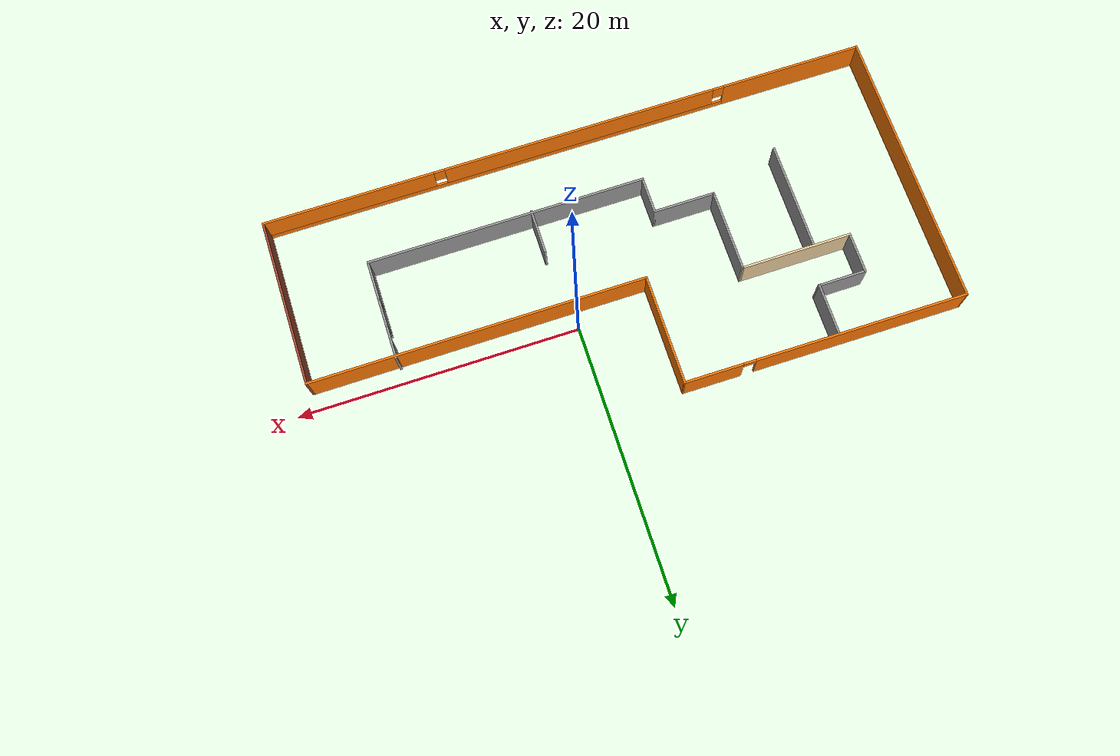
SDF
<?xml version='1.0'?>
<sdf version='1.6'>
  <model name='room'>
    <pose frame=''>-3.47828 -3.35772 0 0 -0 0</pose>
    <link name='Wall_0'>
      <collision name='Wall_0_Collision'>
        <geometry>
          <box>
            <size>20.25 0.15 2.5</size>
          </box>
        </geometry>
        <pose frame=''>0 0 1.25 0 -0 0</pose>
      </collision>
      <visual name='Wall_0_Visual'>
        <pose frame=''>0 0 1.25 0 -0 0</pose>
        <geometry>
          <box>
            <size>20.25 0.15 2.5</size>
          </box>
        </geometry>
        <material>
          <script>
            <uri>file://media/materials/scripts/gazebo.material</uri>
            <name>Gazebo/Grey</name>
          </script>
          <ambient>0.996078 0.47451 0.0196078 1</ambient>
        </material>
        <meta>
          <layer>0</layer>
        </meta>
      </visual>
      <pose frame=''>-22.0497 -0.000277 0 0 0 -1.5708</pose>
    </link>
    <link name='Wall_1'>
      <pose frame=''>0.000276 -10.0503 0 0 -0 0</pose>
      <visual name='Wall_1_Visual_0'>
        <pose frame=''>-16.9576 0 1.25 0 -0 0</pose>
        <geometry>
          <box>
            <size>10.3348 0.15 2.5</size>
          </box>
        </geometry>
        <material>
          <script>
            <uri>file://media/materials/scripts/gazebo.material</uri>
            <name>Gazebo/Grey</name>
          </script>
          <ambient>0.996078 0.47451 0.0196078 1</ambient>
        </material>
        <meta>
          <layer>0</layer>
        </meta>
      </visual>
      <collision name='Wall_1_Collision_0'>
        <geometry>
          <box>
            <size>10.3348 0.15 2.5</size>
          </box>
        </geometry>
        <pose frame=''>-16.9576 0 1.25 0 -0 0</pose>
      </collision>
      <visual name='Wall_1_Visual_1'>
        <pose frame=''>5.16739 0 0.25 0 -0 0</pose>
        <geometry>
          <box>
            <size>33.9152 0.15 0.5</size>
          </box>
        </geometry>
        <material>
          <script>
            <uri>file://media/materials/scripts/gazebo.material</uri>
            <name>Gazebo/Grey</name>
          </script>
          <ambient>0.996078 0.47451 0.0196078 1</ambient>
        </material>
        <meta>
          <layer>0</layer>
        </meta>
      </visual>
      <collision name='Wall_1_Collision_1'>
        <geometry>
          <box>
            <size>33.9152 0.15 0.5</size>
          </box>
        </geometry>
        <pose frame=''>5.16739 0 0.25 0 -0 0</pose>
      </collision>
      <visual name='Wall_1_Visual_2'>
        <pose frame=''>-0.99201 0 1.5 0 -0 0</pose>
        <geometry>
          <box>
            <size>19.9964 0.15 2</size>
          </box>
        </geometry>
        <material>
          <script>
            <uri>file://media/materials/scripts/gazebo.material</uri>
            <name>Gazebo/Grey</name>
          </script>
          <ambient>0.996078 0.47451 0.0196078 1</ambient>
        </material>
        <meta>
          <layer>0</layer>
        </meta>
      </visual>
      <collision name='Wall_1_Collision_2'>
        <geometry>
          <box>
            <size>19.9964 0.15 2</size>
          </box>
        </geometry>
        <pose frame=''>-0.99201 0 1.5 0 -0 0</pose>
      </collision>
      <visual name='Wall_1_Visual_3'>
        <pose frame=''>15.9656 0 1.5 0 -0 0</pose>
        <geometry>
          <box>
            <size>12.3188 0.15 2</size>
          </box>
        </geometry>
        <material>
          <script>
            <uri>file://media/materials/scripts/gazebo.material</uri>
            <name>Gazebo/Grey</name>
          </script>
          <ambient>0.996078 0.47451 0.0196078 1</ambient>
        </material>
        <meta>
          <layer>0</layer>
        </meta>
      </visual>
      <collision name='Wall_1_Collision_3'>
        <geometry>
          <box>
            <size>12.3188 0.15 2</size>
          </box>
        </geometry>
        <pose frame=''>15.9656 0 1.5 0 -0 0</pose>
      </collision>
      <visual name='Wall_1_Visual_4'>
        <pose frame=''>-11.3902 0 1.9 0 -0 0</pose>
        <geometry>
          <box>
            <size>0.8 0.15 1.2</size>
          </box>
        </geometry>
        <material>
          <script>
            <uri>file://media/materials/scripts/gazebo.material</uri>
            <name>Gazebo/Grey</name>
          </script>
          <ambient>0.996078 0.47451 0.0196078 1</ambient>
        </material>
        <meta>
          <layer>0</layer>
        </meta>
      </visual>
      <collision name='Wall_1_Collision_4'>
        <geometry>
          <box>
            <size>0.8 0.15 1.2</size>
          </box>
        </geometry>
        <pose frame=''>-11.3902 0 1.9 0 -0 0</pose>
      </collision>
      <visual name='Wall_1_Visual_5'>
        <pose frame=''>9.4062 0 1.9 0 -0 0</pose>
        <geometry>
          <box>
            <size>0.8 0.15 1.2</size>
          </box>
        </geometry>
        <material>
          <script>
            <uri>file://media/materials/scripts/gazebo.material</uri>
            <name>Gazebo/Grey</name>
          </script>
          <ambient>0.996078 0.47451 0.0196078 1</ambient>
        </material>
        <meta>
          <layer>0</layer>
        </meta>
      </visual>
      <collision name='Wall_1_Collision_5'>
        <geometry>
          <box>
            <size>0.8 0.15 1.2</size>
          </box>
        </geometry>
        <pose frame=''>9.4062 0 1.9 0 -0 0</pose>
      </collision>
    </link>
    <link name='Wall_10'>
      <collision name='Wall_10_Collision'>
        <geometry>
          <box>
            <size>8 0.15 2.5</size>
          </box>
        </geometry>
        <pose frame=''>0 0 1.25 0 -0 0</pose>
      </collision>
      <visual name='Wall_10_Visual'>
        <pose frame=''>0 0 1.25 0 -0 0</pose>
        <geometry>
          <box>
            <size>8 0.15 2.5</size>
          </box>
        </geometry>
        <material>
          <script>
            <uri>file://media/materials/scripts/gazebo.material</uri>
            <name>Gazebo/Grey</name>
          </script>
          <ambient>0.921569 0.807843 0.615686 1</ambient>
        </material>
        <meta>
          <layer>0</layer>
        </meta>
      </visual>
      <pose frame=''>-12.2007 3.45572 0 0 -0 0</pose>
    </link>
    <link name='Wall_11'>
      <collision name='Wall_11_Collision'>
        <geometry>
          <box>
            <size>6 0.15 2.5</size>
          </box>
        </geometry>
        <pose frame=''>0 0 1.25 0 -0 0</pose>
      </collision>
      <visual name='Wall_11_Visual'>
        <pose frame=''>0 0 1.25 0 -0 0</pose>
        <geometry>
          <box>
            <size>6 0.15 2.5</size>
          </box>
        </geometry>
        <material>
          <script>
            <uri>file://media/materials/scripts/gazebo.material</uri>
            <name>Gazebo/Grey</name>
          </script>
          <ambient>1 1 1 1</ambient>
        </material>
        <meta>
          <layer>0</layer>
        </meta>
      </visual>
      <pose frame=''>-8.27576 0.530883 0 0 0 -1.57081</pose>
    </link>
    <link name='Wall_12'>
      <collision name='Wall_12_Collision'>
        <geometry>
          <box>
            <size>4.5 0.15 2.5</size>
          </box>
        </geometry>
        <pose frame=''>0 0 1.25 0 -0 0</pose>
      </collision>
      <visual name='Wall_12_Visual'>
        <pose frame=''>0 0 1.25 0 -0 0</pose>
        <geometry>
          <box>
            <size>4.5 0.15 2.5</size>
          </box>
        </geometry>
        <material>
          <script>
            <uri>file://media/materials/scripts/gazebo.material</uri>
            <name>Gazebo/Grey</name>
          </script>
          <ambient>1 1 1 1</ambient>
        </material>
        <meta>
          <layer>0</layer>
        </meta>
      </visual>
      <pose frame=''>-6.10079 -2.39396 0 0 -0 0</pose>
    </link>
    <link name='Wall_13'>
      <collision name='Wall_13_Collision'>
        <geometry>
          <box>
            <size>2.75 0.15 2.5</size>
          </box>
        </geometry>
        <pose frame=''>0 0 1.25 0 -0 0</pose>
      </collision>
      <visual name='Wall_13_Visual'>
        <pose frame=''>0 0 1.25 0 -0 0</pose>
        <geometry>
          <box>
            <size>2.75 0.15 2.5</size>
          </box>
        </geometry>
        <material>
          <script>
            <uri>file://media/materials/scripts/gazebo.material</uri>
            <name>Gazebo/Grey</name>
          </script>
          <ambient>1 1 1 1</ambient>
        </material>
        <meta>
          <layer>0</layer>
        </meta>
      </visual>
      <pose frame=''>-3.92579 -3.69396 0 0 0 -1.5708</pose>
    </link>
    <link name='Wall_14'>
      <collision name='Wall_14_Collision'>
        <geometry>
          <box>
            <size>20 0.15 2.5</size>
          </box>
        </geometry>
        <pose frame=''>0 0 1.25 0 -0 0</pose>
      </collision>
      <visual name='Wall_14_Visual'>
        <pose frame=''>0 0 1.25 0 -0 0</pose>
        <geometry>
          <box>
            <size>20 0.15 2.5</size>
          </box>
        </geometry>
        <material>
          <script>
            <uri>file://media/materials/scripts/gazebo.material</uri>
            <name>Gazebo/Grey</name>
          </script>
          <ambient>1 1 1 1</ambient>
        </material>
        <meta>
          <layer>0</layer>
        </meta>
      </visual>
      <pose frame=''>5.99921 -4.99396 0 0 -0 0</pose>
    </link>
    <link name='Wall_15'>
      <collision name='Wall_15_Collision'>
        <geometry>
          <box>
            <size>3 0.15 2.5</size>
          </box>
        </geometry>
        <pose frame=''>0 0 1.25 0 -0 0</pose>
      </collision>
      <visual name='Wall_15_Visual'>
        <pose frame=''>0 0 1.25 0 -0 0</pose>
        <geometry>
          <box>
            <size>3 0.15 2.5</size>
          </box>
        </geometry>
        <material>
          <script>
            <uri>file://media/materials/scripts/gazebo.material</uri>
            <name>Gazebo/Grey</name>
          </script>
          <ambient>1 1 1 1</ambient>
        </material>
        <meta>
          <layer>0</layer>
        </meta>
      </visual>
      <pose frame=''>15.9242 -3.56896 0 0 -0 1.5708</pose>
    </link>
    <link name='Wall_16'>
      <pose frame=''>15.9242 0.031042 0 0 -0 1.5708</pose>
      <visual name='Wall_16_Visual_0'>
        <pose frame=''>-1.20454 0 1.25 0 -0 0</pose>
        <geometry>
          <box>
            <size>2.09091 0.15 2.5</size>
          </box>
        </geometry>
        <material>
          <script>
            <uri>file://media/materials/scripts/gazebo.material</uri>
            <name>Gazebo/Grey</name>
          </script>
          <ambient>1 1 1 1</ambient>
        </material>
        <meta>
          <layer>0</layer>
        </meta>
      </visual>
      <collision name='Wall_16_Collision_0'>
        <geometry>
          <box>
            <size>2.09091 0.15 2.5</size>
          </box>
        </geometry>
        <pose frame=''>-1.20454 0 1.25 0 -0 0</pose>
      </collision>
      <visual name='Wall_16_Visual_1'>
        <pose frame=''>1.49545 0 1.25 0 -0 0</pose>
        <geometry>
          <box>
            <size>1.50909 0.15 2.5</size>
          </box>
        </geometry>
        <material>
          <script>
            <uri>file://media/materials/scripts/gazebo.material</uri>
            <name>Gazebo/Grey</name>
          </script>
          <ambient>1 1 1 1</ambient>
        </material>
        <meta>
          <layer>0</layer>
        </meta>
      </visual>
      <collision name='Wall_16_Collision_1'>
        <geometry>
          <box>
            <size>1.50909 0.15 2.5</size>
          </box>
        </geometry>
        <pose frame=''>1.49545 0 1.25 0 -0 0</pose>
      </collision>
      <visual name='Wall_16_Visual_2'>
        <pose frame=''>0.29091 0 2.25 0 -0 0</pose>
        <geometry>
          <box>
            <size>0.9 0.15 0.5</size>
          </box>
        </geometry>
        <material>
          <script>
            <uri>file://media/materials/scripts/gazebo.material</uri>
            <name>Gazebo/Grey</name>
          </script>
          <ambient>1 1 1 1</ambient>
        </material>
        <meta>
          <layer>0</layer>
        </meta>
      </visual>
      <collision name='Wall_16_Collision_2'>
        <geometry>
          <box>
            <size>0.9 0.15 0.5</size>
          </box>
        </geometry>
        <pose frame=''>0.29091 0 2.25 0 -0 0</pose>
      </collision>
    </link>
    <link name='Wall_18'>
      <collision name='Wall_18_Collision'>
        <geometry>
          <box>
            <size>7.75 0.15 2.5</size>
          </box>
        </geometry>
        <pose frame=''>0 0 1.25 0 -0 0</pose>
      </collision>
      <visual name='Wall_18_Visual'>
        <pose frame=''>0 0 1.25 0 -0 0</pose>
        <geometry>
          <box>
            <size>7.75 0.15 2.5</size>
          </box>
        </geometry>
        <material>
          <script>
            <uri>file://media/materials/scripts/gazebo.material</uri>
            <name>Gazebo/Grey</name>
          </script>
          <ambient>1 1 1 1</ambient>
        </material>
        <meta>
          <layer>0</layer>
        </meta>
      </visual>
      <pose frame=''>-13.4819 -0.463181 0 0 0 -1.5708</pose>
    </link>
    <link name='Wall_2'>
      <collision name='Wall_2_Collision'>
        <geometry>
          <box>
            <size>12.25 0.15 2.5</size>
          </box>
        </geometry>
        <pose frame=''>0 0 1.25 0 -0 0</pose>
      </collision>
      <visual name='Wall_2_Visual'>
        <pose frame=''>0 0 1.25 0 -0 0</pose>
        <geometry>
          <box>
            <size>12.25 0.15 2.5</size>
          </box>
        </geometry>
        <material>
          <script>
            <uri>file://media/materials/scripts/gazebo.material</uri>
            <name>Gazebo/Bricks</name>
          </script>
          <ambient>0.996078 0.47451 0.0196078 1</ambient>
        </material>
        <meta>
          <layer>0</layer>
        </meta>
      </visual>
      <pose frame=''>22.0503 -4.00028 0 0 -0 1.5708</pose>
    </link>
    <link name='Wall_20'>
      <collision name='Wall_20_Collision'>
        <geometry>
          <box>
            <size>3.25 0.15 2.5</size>
          </box>
        </geometry>
        <pose frame=''>0 0 1.25 0 -0 0</pose>
      </collision>
      <visual name='Wall_20_Visual'>
        <pose frame=''>0 0 1.25 0 -0 0</pose>
        <geometry>
          <box>
            <size>3.25 0.15 2.5</size>
          </box>
        </geometry>
        <material>
          <script>
            <uri>file://media/materials/scripts/gazebo.material</uri>
            <name>Gazebo/Grey</name>
          </script>
          <ambient>1 1 1 1</ambient>
        </material>
        <meta>
          <layer>0</layer>
        </meta>
      </visual>
      <pose frame=''>4.17659 -3.5425 0 0 -0 1.5708</pose>
    </link>
    <link name='Wall_3'>
      <collision name='Wall_3_Collision'>
        <geometry>
          <box>
            <size>24 0.15 2.5</size>
          </box>
        </geometry>
        <pose frame=''>0 0 1.25 0 -0 0</pose>
      </collision>
      <visual name='Wall_3_Visual'>
        <pose frame=''>0 0 1.25 0 -0 0</pose>
        <geometry>
          <box>
            <size>24 0.15 2.5</size>
          </box>
        </geometry>
        <material>
          <script>
            <uri>file://media/materials/scripts/gazebo.material</uri>
            <name>Gazebo/Grey</name>
          </script>
          <ambient>0.996078 0.47451 0.0196078 1</ambient>
        </material>
        <meta>
          <layer>0</layer>
        </meta>
      </visual>
      <pose frame=''>10.1253 2.04972 0 0 -0 3.14159</pose>
    </link>
    <link name='Wall_4'>
      <collision name='Wall_4_Collision'>
        <geometry>
          <box>
            <size>8 0.15 2.5</size>
          </box>
        </geometry>
        <pose frame=''>0 0 1.25 0 -0 0</pose>
      </collision>
      <visual name='Wall_4_Visual'>
        <pose frame=''>0 0 1.25 0 -0 0</pose>
        <geometry>
          <box>
            <size>8 0.15 2.5</size>
          </box>
        </geometry>
        <material>
          <script>
            <uri>file://media/materials/scripts/gazebo.material</uri>
            <name>Gazebo/Grey</name>
          </script>
          <ambient>0.996078 0.47451 0.0196078 1</ambient>
        </material>
        <meta>
          <layer>0</layer>
        </meta>
      </visual>
      <pose frame=''>-1.79972 5.97472 0 0 -0 1.5708</pose>
    </link>
    <link name='Wall_5'>
      <pose frame=''>-11.9247 9.97472 0 0 -0 3.13418</pose>
      <visual name='Wall_5_Visual_0'>
        <pose frame=''>-8.08499 0 1.25 0 -0 0</pose>
        <geometry>
          <box>
            <size>4.23058 0.15 2.5</size>
          </box>
        </geometry>
        <material>
          <script>
            <uri>file://media/materials/scripts/gazebo.material</uri>
            <name>Gazebo/Grey</name>
          </script>
          <ambient>0.996078 0.47451 0.0196078 1</ambient>
        </material>
        <meta>
          <layer>0</layer>
        </meta>
      </visual>
      <collision name='Wall_5_Collision_0'>
        <geometry>
          <box>
            <size>4.23058 0.15 2.5</size>
          </box>
        </geometry>
        <pose frame=''>-8.08499 0 1.25 0 -0 0</pose>
      </collision>
      <visual name='Wall_5_Visual_1'>
        <pose frame=''>2.56529 0 1.25 0 -0 0</pose>
        <geometry>
          <box>
            <size>15.27 0.15 2.5</size>
          </box>
        </geometry>
        <material>
          <script>
            <uri>file://media/materials/scripts/gazebo.material</uri>
            <name>Gazebo/Grey</name>
          </script>
          <ambient>0.996078 0.47451 0.0196078 1</ambient>
        </material>
        <meta>
          <layer>0</layer>
        </meta>
      </visual>
      <collision name='Wall_5_Collision_1'>
        <geometry>
          <box>
            <size>15.27 0.15 2.5</size>
          </box>
        </geometry>
        <pose frame=''>2.56529 0 1.25 0 -0 0</pose>
      </collision>
      <visual name='Wall_5_Visual_2'>
        <pose frame=''>-5.5197 0 2.25 0 -0 0</pose>
        <geometry>
          <box>
            <size>0.9 0.15 0.5</size>
          </box>
        </geometry>
        <material>
          <script>
            <uri>file://media/materials/scripts/gazebo.material</uri>
            <name>Gazebo/Grey</name>
          </script>
          <ambient>0.996078 0.47451 0.0196078 1</ambient>
        </material>
        <meta>
          <layer>0</layer>
        </meta>
      </visual>
      <collision name='Wall_5_Collision_2'>
        <geometry>
          <box>
            <size>0.9 0.15 0.5</size>
          </box>
        </geometry>
        <pose frame=''>-5.5197 0 2.25 0 -0 0</pose>
      </collision>
    </link>
    <link name='Wall_7'>
      <collision name='Wall_7_Collision'>
        <geometry>
          <box>
            <size>3.75 0.15 2.5</size>
          </box>
        </geometry>
        <pose frame=''>0 0 1.25 0 -0 0</pose>
      </collision>
      <visual name='Wall_7_Visual'>
        <pose frame=''>0 0 1.25 0 -0 0</pose>
        <geometry>
          <box>
            <size>3.75 0.15 2.5</size>
          </box>
        </geometry>
        <material>
          <script>
            <uri>file://media/materials/scripts/gazebo.material</uri>
            <name>Gazebo/Grey</name>
          </script>
          <ambient>1 1 1 1</ambient>
        </material>
        <meta>
          <layer>0</layer>
        </meta>
      </visual>
      <pose frame=''>-12.7758 8.10604 0 0 0 -1.5708</pose>
    </link>
    <link name='Wall_8'>
      <collision name='Wall_8_Collision'>
        <geometry>
          <box>
            <size>3.5 0.15 2.5</size>
          </box>
        </geometry>
        <pose frame=''>0 0 1.25 0 -0 0</pose>
      </collision>
      <visual name='Wall_8_Visual'>
        <pose frame=''>0 0 1.25 0 -0 0</pose>
        <geometry>
          <box>
            <size>3.5 0.15 2.5</size>
          </box>
        </geometry>
        <material>
          <script>
            <uri>file://media/materials/scripts/gazebo.material</uri>
            <name>Gazebo/Grey</name>
          </script>
          <ambient>1 1 1 1</ambient>
        </material>
        <meta>
          <layer>0</layer>
        </meta>
      </visual>
      <pose frame=''>-14.4508 6.30604 0 0 -0 3.14159</pose>
    </link>
    <link name='Wall_9'>
      <collision name='Wall_9_Collision'>
        <geometry>
          <box>
            <size>3 0.15 2.5</size>
          </box>
        </geometry>
        <pose frame=''>0 0 1.25 0 -0 0</pose>
      </collision>
      <visual name='Wall_9_Visual'>
        <pose frame=''>0 0 1.25 0 -0 0</pose>
        <geometry>
          <box>
            <size>3 0.15 2.5</size>
          </box>
        </geometry>
        <material>
          <script>
            <uri>file://media/materials/scripts/gazebo.material</uri>
            <name>Gazebo/Grey</name>
          </script>
          <ambient>1 1 1 1</ambient>
        </material>
        <meta>
          <layer>0</layer>
        </meta>
      </visual>
      <pose frame=''>-16.1258 4.88088 0 0 0 -1.57077</pose>
    </link>
    <static>1</static>
  </model>
</sdf>
